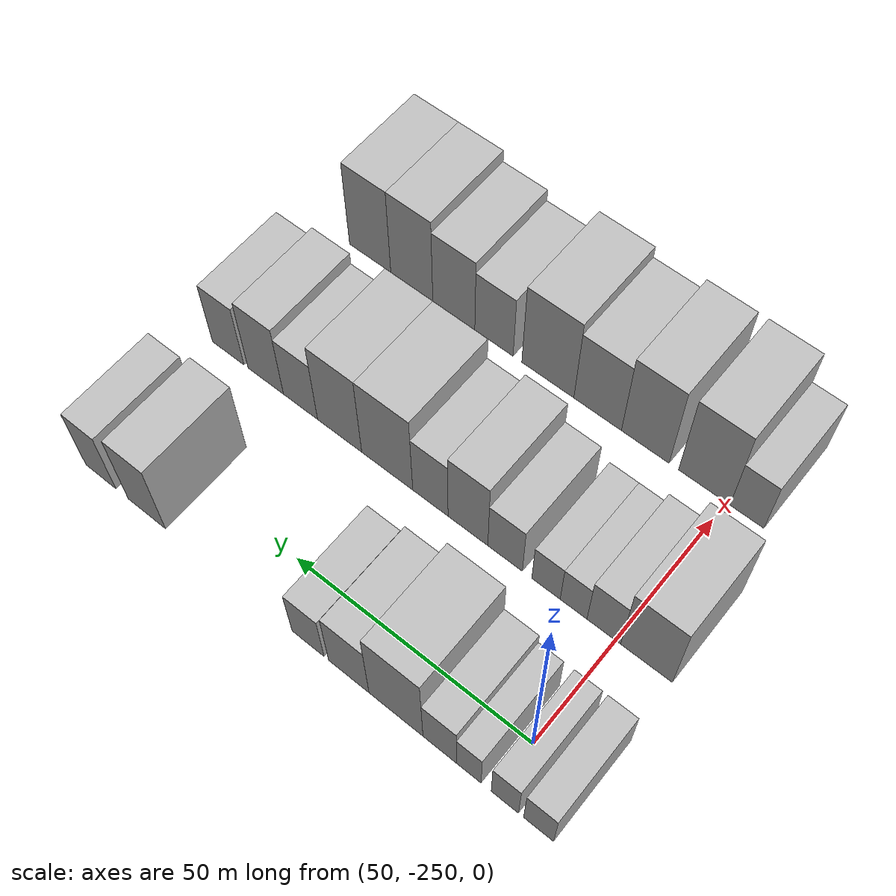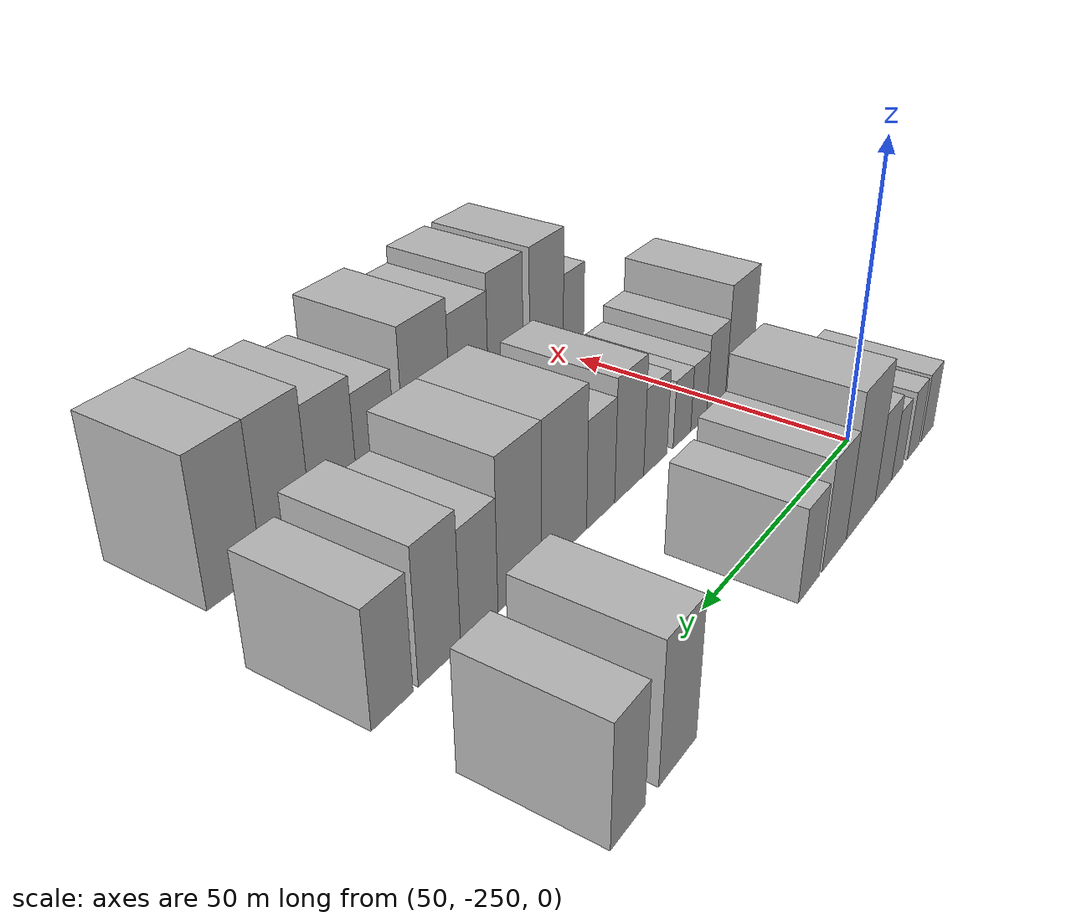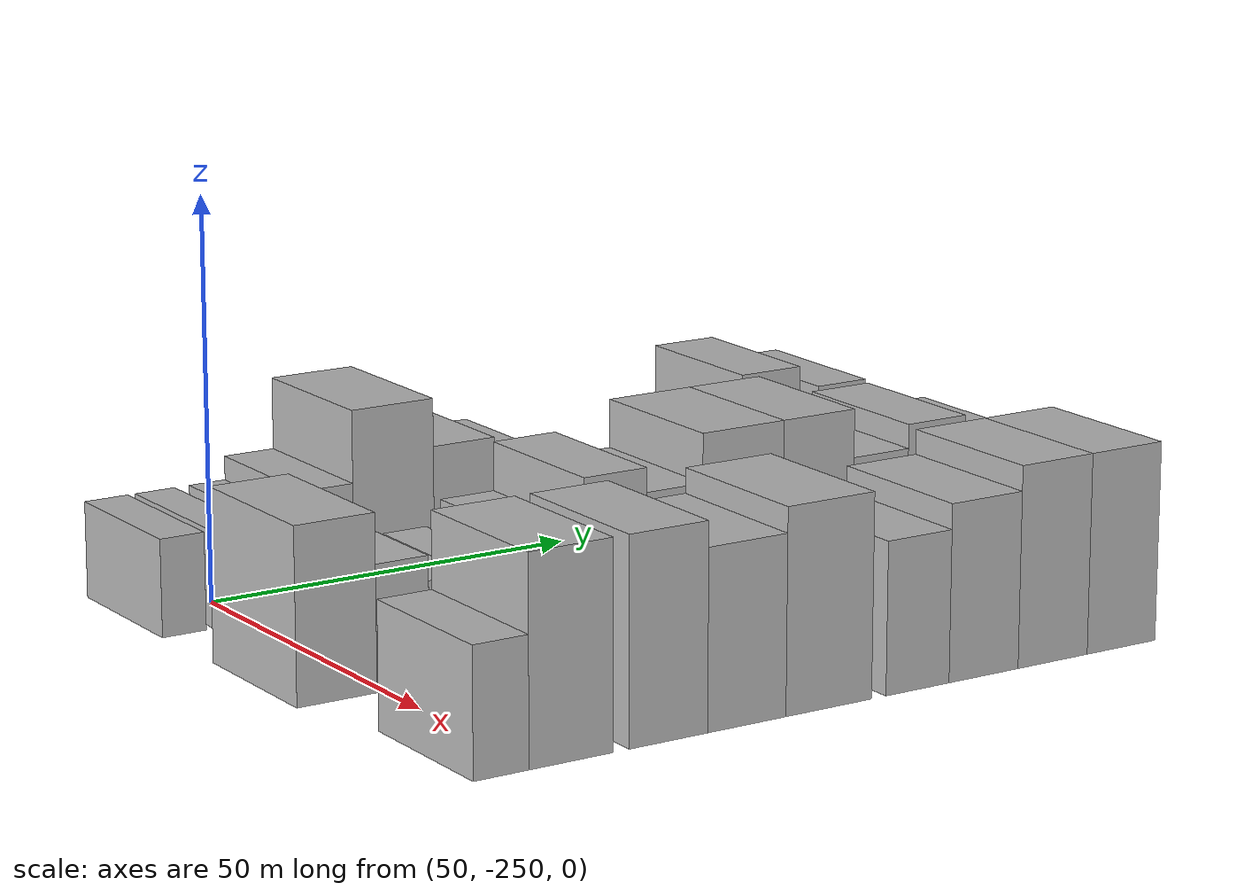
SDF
<sdf version="1.6">
 <world name="default">
  <model name="building_10">
   <static>1</static>
   <pose>50.0000 -258.7384 0 0.000000 0.000000 0.000000</pose>
   <link name="link">
    <pose>0 0 6.00 0 0 0</pose>
    <collision name="collision"><geometry><box><size>20.0000 5.7780 12.0000</size></box></geometry></collision>
    <visual name="visual">
     <cast_shadows>0</cast_shadows>
     <geometry><box><size>20.0000 5.7780 12.0000</size></box></geometry>
     <material>
      <script>
       <uri>model://HANNAS_wall/materials/scripts</uri>
       <uri>model://HANNAS_wall/materials/textures</uri>
       <name>vrc/HANNAS_wall</name>
      </script>
     </material>
    </visual>
   </link>
  </model>
  <model name="building_11">
   <static>1</static>
   <pose>50.0000 -252.1770 0 0.000000 0.000000 0.000000</pose>
   <link name="link">
    <pose>0 0 6.00 0 0 0</pose>
    <collision name="collision"><geometry><box><size>20.0000 5.3448 12.0000</size></box></geometry></collision>
    <visual name="visual">
     <cast_shadows>0</cast_shadows>
     <geometry><box><size>20.0000 5.3448 12.0000</size></box></geometry>
     <material>
      <script>
       <uri>model://HANNAS_wall/materials/scripts</uri>
       <uri>model://HANNAS_wall/materials/textures</uri>
       <name>vrc/HANNAS_wall</name>
      </script>
     </material>
    </visual>
   </link>
  </model>
  <model name="building_12">
   <static>1</static>
   <pose>50.0000 -245.0418 0 0.000000 0.000000 0.000000</pose>
   <link name="link">
    <pose>0 0 6.00 0 0 0</pose>
    <collision name="collision"><geometry><box><size>20.0000 4.9258 12.0000</size></box></geometry></collision>
    <visual name="visual">
     <cast_shadows>0</cast_shadows>
     <geometry><box><size>20.0000 4.9258 12.0000</size></box></geometry>
     <material>
      <script>
       <uri>model://HANNAS_wall/materials/scripts</uri>
       <uri>model://HANNAS_wall/materials/textures</uri>
       <name>vrc/HANNAS_wall</name>
      </script>
     </material>
    </visual>
   </link>
  </model>
  <model name="building_13">
   <static>1</static>
   <pose>50.0000 -239.1823 0 0.000000 0.000000 0.000000</pose>
   <link name="link">
    <pose>0 0 7.50 0 0 0</pose>
    <collision name="collision"><geometry><box><size>20.0000 6.7931 15.0000</size></box></geometry></collision>
    <visual name="visual">
     <cast_shadows>0</cast_shadows>
     <geometry><box><size>20.0000 6.7931 15.0000</size></box></geometry>
     <material>
      <script>
       <uri>model://HANNAS_wall/materials/scripts</uri>
       <uri>model://HANNAS_wall/materials/textures</uri>
       <name>vrc/HANNAS_wall</name>
      </script>
     </material>
    </visual>
   </link>
  </model>
  <model name="building_14">
   <static>1</static>
   <pose>50.0000 -230.1749 0 0.000000 0.000000 0.000000</pose>
   <link name="link">
    <pose>0 0 12.00 0 0 0</pose>
    <collision name="collision"><geometry><box><size>20.0000 11.2219 24.0000</size></box></geometry></collision>
    <visual name="visual">
     <cast_shadows>0</cast_shadows>
     <geometry><box><size>20.0000 11.2219 24.0000</size></box></geometry>
     <material>
      <script>
       <uri>model://HANNAS_wall/materials/scripts</uri>
       <uri>model://HANNAS_wall/materials/textures</uri>
       <name>vrc/HANNAS_wall</name>
      </script>
     </material>
    </visual>
   </link>
  </model>
  <model name="building_15">
   <static>1</static>
   <pose>50.0000 -220.2585 0 0.000000 0.000000 0.000000</pose>
   <link name="link">
    <pose>0 0 9.00 0 0 0</pose>
    <collision name="collision"><geometry><box><size>20.0000 8.6108 18.0000</size></box></geometry></collision>
    <visual name="visual">
     <cast_shadows>0</cast_shadows>
     <geometry><box><size>20.0000 8.6108 18.0000</size></box></geometry>
     <material>
      <script>
       <uri>model://HANNAS_wall/materials/scripts</uri>
       <uri>model://HANNAS_wall/materials/textures</uri>
       <name>vrc/HANNAS_wall</name>
      </script>
     </material>
    </visual>
   </link>
  </model>
  <model name="building_16">
   <static>1</static>
   <pose>50.0000 -211.4764 0 0.000000 0.000000 0.000000</pose>
   <link name="link">
    <pose>0 0 7.50 0 0 0</pose>
    <collision name="collision"><geometry><box><size>20.0000 6.9535 15.0000</size></box></geometry></collision>
    <visual name="visual">
     <cast_shadows>0</cast_shadows>
     <geometry><box><size>20.0000 6.9535 15.0000</size></box></geometry>
     <material>
      <script>
       <uri>model://HANNAS_wall/materials/scripts</uri>
       <uri>model://HANNAS_wall/materials/textures</uri>
       <name>vrc/HANNAS_wall</name>
      </script>
     </material>
    </visual>
   </link>
  </model>
  <model name="building_17">
   <static>1</static>
   <pose>50.0000 -174.6154 0 0.000000 0.000000 0.000000</pose>
   <link name="link">
    <pose>0 0 10.50 0 0 0</pose>
    <collision name="collision"><geometry><box><size>20.0000 8.9228 21.0000</size></box></geometry></collision>
    <visual name="visual">
     <cast_shadows>0</cast_shadows>
     <geometry><box><size>20.0000 8.9228 21.0000</size></box></geometry>
     <material>
      <script>
       <uri>model://HANNAS_wall/materials/scripts</uri>
       <uri>model://HANNAS_wall/materials/textures</uri>
       <name>vrc/HANNAS_wall</name>
      </script>
     </material>
    </visual>
   </link>
  </model>
  <model name="building_18">
   <static>1</static>
   <pose>50.0000 -163.4706 0 0.000000 0.000000 0.000000</pose>
   <link name="link">
    <pose>0 0 9.00 0 0 0</pose>
    <collision name="collision"><geometry><box><size>20.0000 7.3669 18.0000</size></box></geometry></collision>
    <visual name="visual">
     <cast_shadows>0</cast_shadows>
     <geometry><box><size>20.0000 7.3669 18.0000</size></box></geometry>
     <material>
      <script>
       <uri>model://HANNAS_wall/materials/scripts</uri>
       <uri>model://HANNAS_wall/materials/textures</uri>
       <name>vrc/HANNAS_wall</name>
      </script>
     </material>
    </visual>
   </link>
  </model>
  <model name="building_88">
   <static>1</static>
   <pose>82.0000 -256.0582 0 0.000000 0.000000 0.000000</pose>
   <link name="link">
    <pose>0 0 10.50 0 0 0</pose>
    <collision name="collision"><geometry><box><size>20.0000 10.2505 21.0000</size></box></geometry></collision>
    <visual name="visual">
     <cast_shadows>0</cast_shadows>
     <geometry><box><size>20.0000 10.2505 21.0000</size></box></geometry>
     <material>
      <script>
       <uri>model://HANNAS_wall/materials/scripts</uri>
       <uri>model://HANNAS_wall/materials/textures</uri>
       <name>vrc/HANNAS_wall</name>
      </script>
     </material>
    </visual>
   </link>
  </model>
  <model name="building_89">
   <static>1</static>
   <pose>82.0000 -247.5198 0 0.000000 0.000000 0.000000</pose>
   <link name="link">
    <pose>0 0 7.50 0 0 0</pose>
    <collision name="collision"><geometry><box><size>20.0000 6.8262 15.0000</size></box></geometry></collision>
    <visual name="visual">
     <cast_shadows>0</cast_shadows>
     <geometry><box><size>20.0000 6.8262 15.0000</size></box></geometry>
     <material>
      <script>
       <uri>model://HANNAS_wall/materials/scripts</uri>
       <uri>model://HANNAS_wall/materials/textures</uri>
       <name>vrc/HANNAS_wall</name>
      </script>
     </material>
    </visual>
   </link>
  </model>
  <model name="building_90">
   <static>1</static>
   <pose>82.0000 -241.3505 0 0.000000 0.000000 0.000000</pose>
   <link name="link">
    <pose>0 0 6.00 0 0 0</pose>
    <collision name="collision"><geometry><box><size>20.0000 5.5124 12.0000</size></box></geometry></collision>
    <visual name="visual">
     <cast_shadows>0</cast_shadows>
     <geometry><box><size>20.0000 5.5124 12.0000</size></box></geometry>
     <material>
      <script>
       <uri>model://HANNAS_wall/materials/scripts</uri>
       <uri>model://HANNAS_wall/materials/textures</uri>
       <name>vrc/HANNAS_wall</name>
      </script>
     </material>
    </visual>
   </link>
  </model>
  <model name="building_91">
   <static>1</static>
   <pose>82.0000 -235.6387 0 0.000000 0.000000 0.000000</pose>
   <link name="link">
    <pose>0 0 6.00 0 0 0</pose>
    <collision name="collision"><geometry><box><size>20.0000 5.9111 12.0000</size></box></geometry></collision>
    <visual name="visual">
     <cast_shadows>0</cast_shadows>
     <geometry><box><size>20.0000 5.9111 12.0000</size></box></geometry>
     <material>
      <script>
       <uri>model://HANNAS_wall/materials/scripts</uri>
       <uri>model://HANNAS_wall/materials/textures</uri>
       <name>vrc/HANNAS_wall</name>
      </script>
     </material>
    </visual>
   </link>
  </model>
  <model name="building_92">
   <static>1</static>
   <pose>82.0000 -226.9985 0 0.000000 0.000000 0.000000</pose>
   <link name="link">
    <pose>0 0 7.50 0 0 0</pose>
    <collision name="collision"><geometry><box><size>20.0000 7.3692 15.0000</size></box></geometry></collision>
    <visual name="visual">
     <cast_shadows>0</cast_shadows>
     <geometry><box><size>20.0000 7.3692 15.0000</size></box></geometry>
     <material>
      <script>
       <uri>model://HANNAS_wall/materials/scripts</uri>
       <uri>model://HANNAS_wall/materials/textures</uri>
       <name>vrc/HANNAS_wall</name>
      </script>
     </material>
    </visual>
   </link>
  </model>
  <model name="building_93">
   <static>1</static>
   <pose>82.0000 -218.9973 0 0.000000 0.000000 0.000000</pose>
   <link name="link">
    <pose>0 0 10.50 0 0 0</pose>
    <collision name="collision"><geometry><box><size>20.0000 8.6333 21.0000</size></box></geometry></collision>
    <visual name="visual">
     <cast_shadows>0</cast_shadows>
     <geometry><box><size>20.0000 8.6333 21.0000</size></box></geometry>
     <material>
      <script>
       <uri>model://HANNAS_wall/materials/scripts</uri>
       <uri>model://HANNAS_wall/materials/textures</uri>
       <name>vrc/HANNAS_wall</name>
      </script>
     </material>
    </visual>
   </link>
  </model>
  <model name="building_94">
   <static>1</static>
   <pose>82.0000 -210.7633 0 0.000000 0.000000 0.000000</pose>
   <link name="link">
    <pose>0 0 9.00 0 0 0</pose>
    <collision name="collision"><geometry><box><size>20.0000 7.8345 18.0000</size></box></geometry></collision>
    <visual name="visual">
     <cast_shadows>0</cast_shadows>
     <geometry><box><size>20.0000 7.8345 18.0000</size></box></geometry>
     <material>
      <script>
       <uri>model://HANNAS_wall/materials/scripts</uri>
       <uri>model://HANNAS_wall/materials/textures</uri>
       <name>vrc/HANNAS_wall</name>
      </script>
     </material>
    </visual>
   </link>
  </model>
  <model name="building_95">
   <static>1</static>
   <pose>82.0000 -201.0494 0 0.000000 0.000000 0.000000</pose>
   <link name="link">
    <pose>0 0 12.00 0 0 0</pose>
    <collision name="collision"><geometry><box><size>20.0000 11.5933 24.0000</size></box></geometry></collision>
    <visual name="visual">
     <cast_shadows>0</cast_shadows>
     <geometry><box><size>20.0000 11.5933 24.0000</size></box></geometry>
     <material>
      <script>
       <uri>model://HANNAS_wall/materials/scripts</uri>
       <uri>model://HANNAS_wall/materials/textures</uri>
       <name>vrc/HANNAS_wall</name>
      </script>
     </material>
    </visual>
   </link>
  </model>
  <model name="building_96">
   <static>1</static>
   <pose>82.0000 -190.1125 0 0.000000 0.000000 0.000000</pose>
   <link name="link">
    <pose>0 0 12.00 0 0 0</pose>
    <collision name="collision"><geometry><box><size>20.0000 10.2804 24.0000</size></box></geometry></collision>
    <visual name="visual">
     <cast_shadows>0</cast_shadows>
     <geometry><box><size>20.0000 10.2804 24.0000</size></box></geometry>
     <material>
      <script>
       <uri>model://HANNAS_wall/materials/scripts</uri>
       <uri>model://HANNAS_wall/materials/textures</uri>
       <name>vrc/HANNAS_wall</name>
      </script>
     </material>
    </visual>
   </link>
  </model>
  <model name="building_97">
   <static>1</static>
   <pose>82.0000 -180.9027 0 0.000000 0.000000 0.000000</pose>
   <link name="link">
    <pose>0 0 9.00 0 0 0</pose>
    <collision name="collision"><geometry><box><size>20.0000 8.1391 18.0000</size></box></geometry></collision>
    <visual name="visual">
     <cast_shadows>0</cast_shadows>
     <geometry><box><size>20.0000 8.1391 18.0000</size></box></geometry>
     <material>
      <script>
       <uri>model://HANNAS_wall/materials/scripts</uri>
       <uri>model://HANNAS_wall/materials/textures</uri>
       <name>vrc/HANNAS_wall</name>
      </script>
     </material>
    </visual>
   </link>
  </model>
  <model name="building_98">
   <static>1</static>
   <pose>82.0000 -172.5349 0 0.000000 0.000000 0.000000</pose>
   <link name="link">
    <pose>0 0 10.50 0 0 0</pose>
    <collision name="collision"><geometry><box><size>20.0000 8.5966 21.0000</size></box></geometry></collision>
    <visual name="visual">
     <cast_shadows>0</cast_shadows>
     <geometry><box><size>20.0000 8.5966 21.0000</size></box></geometry>
     <material>
      <script>
       <uri>model://HANNAS_wall/materials/scripts</uri>
       <uri>model://HANNAS_wall/materials/textures</uri>
       <name>vrc/HANNAS_wall</name>
      </script>
     </material>
    </visual>
   </link>
  </model>
  <model name="building_99">
   <static>1</static>
   <pose>82.0000 -163.3403 0 0.000000 0.000000 0.000000</pose>
   <link name="link">
    <pose>0 0 9.00 0 0 0</pose>
    <collision name="collision"><geometry><box><size>20.0000 7.7925 18.0000</size></box></geometry></collision>
    <visual name="visual">
     <cast_shadows>0</cast_shadows>
     <geometry><box><size>20.0000 7.7925 18.0000</size></box></geometry>
     <material>
      <script>
       <uri>model://HANNAS_wall/materials/scripts</uri>
       <uri>model://HANNAS_wall/materials/textures</uri>
       <name>vrc/HANNAS_wall</name>
      </script>
     </material>
    </visual>
   </link>
  </model>
  <model name="building_169">
   <static>1</static>
   <pose>114.0000 -254.1400 0 0.000000 0.000000 0.000000</pose>
   <link name="link">
    <pose>0 0 7.50 0 0 0</pose>
    <collision name="collision"><geometry><box><size>20.0000 6.9075 15.0000</size></box></geometry></collision>
    <visual name="visual">
     <cast_shadows>0</cast_shadows>
     <geometry><box><size>20.0000 6.9075 15.0000</size></box></geometry>
     <material>
      <script>
       <uri>model://HANNAS_wall/materials/scripts</uri>
       <uri>model://HANNAS_wall/materials/textures</uri>
       <name>vrc/HANNAS_wall</name>
      </script>
     </material>
    </visual>
   </link>
  </model>
  <model name="building_170">
   <static>1</static>
   <pose>114.0000 -245.3499 0 0.000000 0.000000 0.000000</pose>
   <link name="link">
    <pose>0 0 12.00 0 0 0</pose>
    <collision name="collision"><geometry><box><size>20.0000 10.6728 24.0000</size></box></geometry></collision>
    <visual name="visual">
     <cast_shadows>0</cast_shadows>
     <geometry><box><size>20.0000 10.6728 24.0000</size></box></geometry>
     <material>
      <script>
       <uri>model://HANNAS_wall/materials/scripts</uri>
       <uri>model://HANNAS_wall/materials/textures</uri>
       <name>vrc/HANNAS_wall</name>
      </script>
     </material>
    </visual>
   </link>
  </model>
  <model name="building_171">
   <static>1</static>
   <pose>114.0000 -232.9028 0 0.000000 0.000000 0.000000</pose>
   <link name="link">
    <pose>0 0 12.00 0 0 0</pose>
    <collision name="collision"><geometry><box><size>20.0000 10.2216 24.0000</size></box></geometry></collision>
    <visual name="visual">
     <cast_shadows>0</cast_shadows>
     <geometry><box><size>20.0000 10.2216 24.0000</size></box></geometry>
     <material>
      <script>
       <uri>model://HANNAS_wall/materials/scripts</uri>
       <uri>model://HANNAS_wall/materials/textures</uri>
       <name>vrc/HANNAS_wall</name>
      </script>
     </material>
    </visual>
   </link>
  </model>
  <model name="building_172">
   <static>1</static>
   <pose>114.0000 -222.5743 0 0.000000 0.000000 0.000000</pose>
   <link name="link">
    <pose>0 0 10.50 0 0 0</pose>
    <collision name="collision"><geometry><box><size>20.0000 10.4354 21.0000</size></box></geometry></collision>
    <visual name="visual">
     <cast_shadows>0</cast_shadows>
     <geometry><box><size>20.0000 10.4354 21.0000</size></box></geometry>
     <material>
      <script>
       <uri>model://HANNAS_wall/materials/scripts</uri>
       <uri>model://HANNAS_wall/materials/textures</uri>
       <name>vrc/HANNAS_wall</name>
      </script>
     </material>
    </visual>
   </link>
  </model>
  <model name="building_173">
   <static>1</static>
   <pose>114.0000 -211.4974 0 0.000000 0.000000 0.000000</pose>
   <link name="link">
    <pose>0 0 12.00 0 0 0</pose>
    <collision name="collision"><geometry><box><size>20.0000 11.7183 24.0000</size></box></geometry></collision>
    <visual name="visual">
     <cast_shadows>0</cast_shadows>
     <geometry><box><size>20.0000 11.7183 24.0000</size></box></geometry>
     <material>
      <script>
       <uri>model://HANNAS_wall/materials/scripts</uri>
       <uri>model://HANNAS_wall/materials/textures</uri>
       <name>vrc/HANNAS_wall</name>
      </script>
     </material>
    </visual>
   </link>
  </model>
  <model name="building_174">
   <static>1</static>
   <pose>114.0000 -199.2010 0 0.000000 0.000000 0.000000</pose>
   <link name="link">
    <pose>0 0 9.00 0 0 0</pose>
    <collision name="collision"><geometry><box><size>20.0000 8.8746 18.0000</size></box></geometry></collision>
    <visual name="visual">
     <cast_shadows>0</cast_shadows>
     <geometry><box><size>20.0000 8.8746 18.0000</size></box></geometry>
     <material>
      <script>
       <uri>model://HANNAS_wall/materials/scripts</uri>
       <uri>model://HANNAS_wall/materials/textures</uri>
       <name>vrc/HANNAS_wall</name>
      </script>
     </material>
    </visual>
   </link>
  </model>
  <model name="building_175">
   <static>1</static>
   <pose>114.0000 -189.7983 0 0.000000 0.000000 0.000000</pose>
   <link name="link">
    <pose>0 0 10.50 0 0 0</pose>
    <collision name="collision"><geometry><box><size>20.0000 9.9308 21.0000</size></box></geometry></collision>
    <visual name="visual">
     <cast_shadows>0</cast_shadows>
     <geometry><box><size>20.0000 9.9308 21.0000</size></box></geometry>
     <material>
      <script>
       <uri>model://HANNAS_wall/materials/scripts</uri>
       <uri>model://HANNAS_wall/materials/textures</uri>
       <name>vrc/HANNAS_wall</name>
      </script>
     </material>
    </visual>
   </link>
  </model>
  <model name="building_176">
   <static>1</static>
   <pose>114.0000 -179.7504 0 0.000000 0.000000 0.000000</pose>
   <link name="link">
    <pose>0 0 12.00 0 0 0</pose>
    <collision name="collision"><geometry><box><size>20.0000 10.1649 24.0000</size></box></geometry></collision>
    <visual name="visual">
     <cast_shadows>0</cast_shadows>
     <geometry><box><size>20.0000 10.1649 24.0000</size></box></geometry>
     <material>
      <script>
       <uri>model://HANNAS_wall/materials/scripts</uri>
       <uri>model://HANNAS_wall/materials/textures</uri>
       <name>vrc/HANNAS_wall</name>
      </script>
     </material>
    </visual>
   </link>
  </model>
  <model name="building_177">
   <static>1</static>
   <pose>114.0000 -169.5722 0 0.000000 0.000000 0.000000</pose>
   <link name="link">
    <pose>0 0 12.00 0 0 0</pose>
    <collision name="collision"><geometry><box><size>20.0000 10.1916 24.0000</size></box></geometry></collision>
    <visual name="visual">
     <cast_shadows>0</cast_shadows>
     <geometry><box><size>20.0000 10.1916 24.0000</size></box></geometry>
     <material>
      <script>
       <uri>model://HANNAS_wall/materials/scripts</uri>
       <uri>model://HANNAS_wall/materials/textures</uri>
       <name>vrc/HANNAS_wall</name>
      </script>
     </material>
    </visual>
   </link>
  </model>
 </world>
</sdf>
